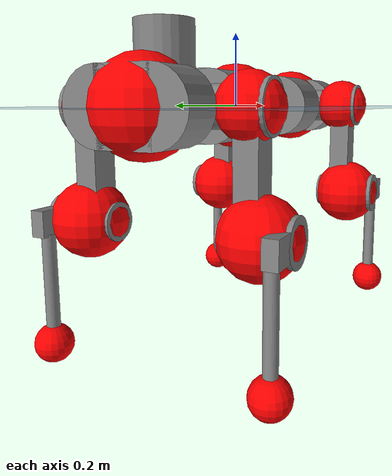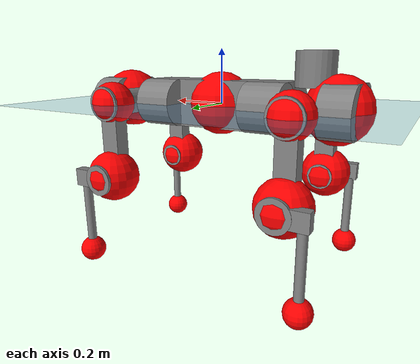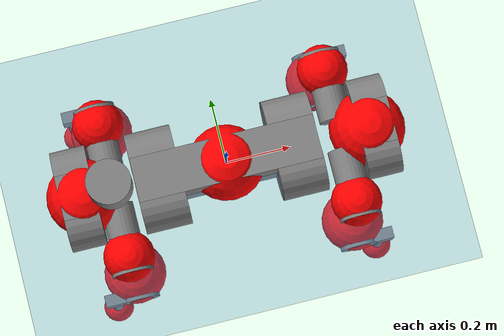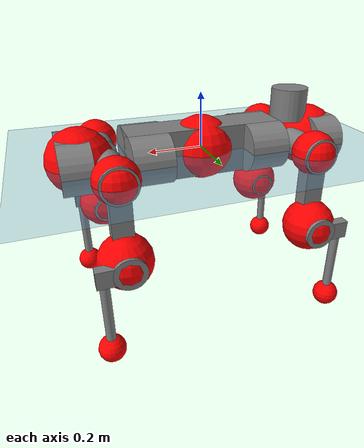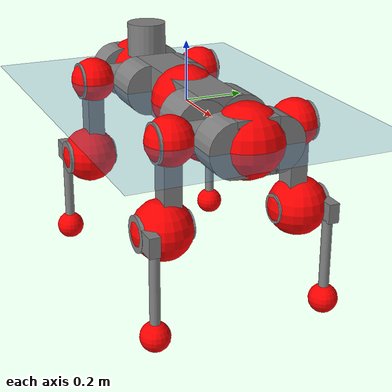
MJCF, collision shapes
<mujoco model="anymal_c">
  <compiler angle="radian" assetdir="assets" balanceinertia="true" inertiafromgeom="false"/>

  <option timestep="0.005" density="1.2" viscosity="2e-05"/>

  <size nkey="1"/>

  <visual>
    <quality shadowsize="8192"/>
    <map shadowclip="0.5"/>
  </visual>

  <default>
    <default class="/">
      <material specular="0" shininess="0.25"/>
      <geom contype="0" conaffinity="0" group="1" solref="-1000 -80"/>
      <site size="0.01 0.005 0.005" group="5"/>
      <general forcelimited="true" forcerange="-80 80" biastype="affine" gainprm="80" biasprm="0 -80 -2"/>
      <default class="anymal_c">
        <joint armature="0.01" damping="0.01" frictionloss="0.1"/>
        <default class="visual">
          <geom type="mesh" group="2"/>
          <default class="visual_zflip"/>
        </default>
        <default class="collision">
          <geom type="cylinder" group="3"/>
          <default class="foot">
            <geom size="0.03 0 0" type="sphere" condim="6" priority="1" friction="0.8 0.02 0.01" solimp="0.015 1 0.03"/>
          </default>
        </default>
      </default>
      <default class="reward_collision_sphere">
        <geom group="5" rgba="1 0 0 1"/>
      </default>
    </default>
  </default>

  <asset>
    <texture type="skybox" colorspace="auto" name="//unnamed_texture_0" builtin="gradient" rgb1="0.95 0.95 0.95" rgb2="0.95 0.95 0.95" width="100" height="600"/>
    <texture type="2d" colorspace="auto" name="texplane" builtin="checker" rgb1="0.345 0.575 0.748" rgb2="0.345 0.575 0.748" markrgb="1 1 1" width="512" height="512"/>
    <texture type="2d" colorspace="linear" name="base" file="base.png"/>
    <texture type="2d" colorspace="linear" name="top_shell" file="top_shell.png"/>
    <texture type="2d" colorspace="linear" name="bottom_shell" file="bottom_shell.png"/>
    <texture type="2d" colorspace="linear" name="remote" file="remote.png"/>
    <texture type="2d" colorspace="linear" name="hatch" file="hatch.png"/>
    <texture type="2d" colorspace="linear" name="handle" file="handle.png"/>
    <texture type="2d" colorspace="linear" name="face" file="face.png"/>
    <texture type="2d" colorspace="linear" name="battery" file="battery.png"/>
    <texture type="2d" colorspace="linear" name="lidar_cage" file="lidar_cage.png"/>
    <texture type="2d" colorspace="linear" name="depth_camera" file="depth_camera.png"/>
    <texture type="2d" colorspace="linear" name="wide_angle_camera" file="wide_angle_camera.png"/>
    <texture type="2d" colorspace="linear" name="lidar" file="lidar.png"/>
    <texture type="2d" colorspace="linear" name="drive" file="drive.png"/>
    <texture type="2d" colorspace="linear" name="hip_l" file="hip_l.png"/>
    <texture type="2d" colorspace="linear" name="shank_l" file="shank_l.png"/>
    <texture type="2d" colorspace="linear" name="foot" file="foot.png"/>
    <texture type="2d" colorspace="linear" name="thigh" file="thigh.png"/>
    <texture type="2d" colorspace="linear" name="shank_r" file="shank_r.png"/>
    <texture type="2d" colorspace="linear" name="hip_r" file="hip_r.png"/>
    <material name="MatPlane" class="/" texture="texplane" texuniform="true" texrepeat="2 2" specular="0.9" shininess="0.5"/>
    <material name="black_plastic" class="/" rgba="0.007 0.007 0.007 1"/>
    <material name="green" class="/" rgba="0.052 0.178 0.033 1"/>
    <material name="red" class="/" rgba="0.178 0.006 0.005 1"/>
    <material name="yellow" class="/" rgba="0.178 0.119 0.006 1"/>
    <material name="lwl" class="/" rgba="0.8 0.8 0.8 1"/>
    <material name="base" class="/" texture="base"/>
    <material name="top_shell" class="/" texture="top_shell"/>
    <material name="bottom_shell" class="/" texture="bottom_shell"/>
    <material name="hip_l" class="/" texture="hip_l"/>
    <material name="thigh" class="/" texture="thigh"/>
    <material name="shank_l" class="/" texture="shank_l"/>
    <material name="foot" class="/" texture="foot"/>
    <material name="hip_r" class="/" texture="hip_r"/>
    <material name="shank" class="/" texture="shank_r"/>
    <material name="hatch" class="/" texture="hatch"/>
    <material name="remote" class="/" texture="remote"/>
    <material name="handle" class="/" texture="handle"/>
    <material name="face" class="/" texture="face"/>
    <material name="depth_camera" class="/" texture="depth_camera"/>
    <material name="wide_angle_camera" class="/" texture="wide_angle_camera"/>
    <material name="battery" class="/" texture="battery"/>
    <material name="lidar_cage" class="/" texture="lidar_cage"/>
    <material name="lidar" class="/" texture="lidar"/>
    <material name="drive" class="/" texture="drive"/>
    <mesh name="base_0" class="/" file="base_0.obj"/>
    <mesh name="base_1" class="/" file="base_1.obj"/>
    <mesh name="base_2" class="/" file="base_2.obj"/>
    <mesh name="base_3" class="/" file="base_3.obj"/>
    <mesh name="base_4" class="/" file="base_4.obj"/>
    <mesh name="base_5" class="/" file="base_5.obj"/>
    <mesh name="top_shell" class="/" file="top_shell.obj"/>
    <mesh name="bottom_shell" class="/" file="bottom_shell.obj"/>
    <mesh name="remote" class="/" file="remote.obj"/>
    <mesh name="handle" class="/" file="handle.obj"/>
    <mesh name="face" class="/" file="face.obj"/>
    <mesh name="wide_angle_camera" class="/" file="wide_angle_camera.obj"/>
    <mesh name="depth_camera" class="/" file="depth_camera.obj"/>
    <mesh name="battery" class="/" file="battery.obj"/>
    <mesh name="lidar_cage" class="/" file="lidar_cage.obj"/>
    <mesh name="lidar" class="/" file="lidar.obj"/>
    <mesh name="drive" class="/" file="drive.obj"/>
    <mesh name="hip_l" class="/" file="hip_l.obj"/>
    <mesh name="thigh" class="/" file="thigh.obj"/>
    <mesh name="shank_l" class="/" file="shank_l.obj"/>
    <mesh name="foot" class="/" file="foot.obj"/>
    <mesh name="hip_r" class="/" file="hip_r.obj"/>
    <mesh name="hatch" class="/" file="hatch.obj"/>
    <mesh name="shank_r" class="/" file="shank_r.obj"/>
  </asset>

  <worldbody>
    <geom name="floor" class="/" size="100 100 0.125" type="plane" group="0" material="MatPlane"/>
    <light name="toplight_shadow" class="/" pos="0 0 5" dir="0.0990148 0.0990148 -0.990148" type="directional" ambient="0.04 0.04 0.04" diffuse="0.55 0.55 0.55" specular="0.12 0.12 0.12"/>
    <light name="toplight_fill" class="/" pos="0 0 5" dir="0.0990148 0.0990148 -0.990148" type="directional" castshadow="false" ambient="0.04 0.04 0.04" diffuse="0.3 0.3 0.3" specular="0.08 0.08 0.08"/>
    <body name="trunk" childclass="anymal_c" pos="0.000155795 0.000155115 0.000520647" quat="1 -7.95216e-05 1.10223e-05 0.000160554">
      <inertial pos="0.0023023 -0.000739416 0.0478816" quat="0.500784 0.500271 0.49958 0.499364" mass="17.4476" diaginertia="0.580672 0.543524 0.194635"/>
      <joint name="//unnamed_joint_0" type="free" armature="0" damping="0" frictionloss="0"/>
      <geom name="//unnamed_geom_1" class="visual" material="green" mesh="base_0"/>
      <geom name="//unnamed_geom_2" class="visual" material="yellow" mesh="base_1"/>
      <geom name="//unnamed_geom_3" class="visual" material="red" mesh="base_2"/>
      <geom name="//unnamed_geom_4" class="visual" material="black_plastic" mesh="base_3"/>
      <geom name="//unnamed_geom_5" class="visual" material="lwl" mesh="base_4"/>
      <geom name="//unnamed_geom_6" class="visual" material="base" mesh="base_5"/>
      <geom name="trunk_1" class="collision" size="0.284306 0.0686255 0.0882328" type="box"/>
      <geom name="trunk_2" class="collision" size="0.0882328 0.0710764" pos="0.214083 0.0682512 0" quat="0.707107 0 0.707107 0"/>
      <geom name="trunk_3" class="collision" size="0.0882328 0.0710764" pos="-0.214083 0.0682512 0" quat="0.707107 0 0.707107 0"/>
      <geom name="trunk_4" class="collision" size="0.0882328 0.0710764" pos="0.214083 -0.0682512 0" quat="0.707107 0 0.707107 0"/>
      <geom name="trunk_5" class="collision" size="0.0882328 0.0710764" pos="-0.214083 -0.0682512 0" quat="0.707107 0 0.707107 0"/>
      <geom name="//unnamed_geom_12" class="visual" material="top_shell" mesh="top_shell"/>
      <geom name="//unnamed_geom_13" class="visual" material="bottom_shell" mesh="bottom_shell"/>
      <geom name="//unnamed_geom_14" class="visual" material="remote" mesh="remote"/>
      <geom name="//unnamed_geom_15" class="visual" material="handle" mesh="handle"/>
      <geom name="//unnamed_geom_16" class="visual" pos="0.407987 0 0" quat="1 0 0 0" material="face" mesh="face"/>
      <geom name="trunk_6" class="collision" size="0.05392 0.0686255 0.0882328" pos="0.462123 0 0" type="box"/>
      <geom name="//unnamed_geom_18" class="collision" size="0.0882328 0.05392" pos="0.462123 0.0682512 0" quat="0.707107 0 0.707107 0"/>
      <geom name="//unnamed_geom_19" class="collision" size="0.0882328 0.05392" pos="0.462123 -0.0682512 0" quat="0.707107 0 0.707107 0"/>
      <geom name="//unnamed_geom_20" class="visual" pos="0.454396 0 -0.0286492" quat="0.965926 0 0.258819 0" material="depth_camera" mesh="depth_camera"/>
      <geom name="//unnamed_geom_21" class="visual" pos="0.50494 0 0.0146974" material="wide_angle_camera" mesh="wide_angle_camera"/>
      <geom name="//unnamed_geom_22" class="visual_zflip" pos="-0.407987 0 0" quat="0 0 0 1" material="face" mesh="face"/>
      <geom name="trunk_7" class="collision" size="0.05392 0.0686255 0.0882328" pos="-0.462123 0 0" quat="0 0 0 1" type="box"/>
      <geom name="//unnamed_geom_24" class="collision" size="0.0882328 0.05392" pos="-0.462123 -0.0682512 0" quat="0 -0.707107 0 0.707107"/>
      <geom name="//unnamed_geom_25" class="collision" size="0.0882328 0.05392" pos="-0.462123 0.0682512 0" quat="0 -0.707107 0 0.707107"/>
      <geom name="//unnamed_geom_26" class="visual" pos="-0.454396 0 -0.0286492" quat="0 -0.258819 0 0.965926" material="depth_camera" mesh="depth_camera"/>
      <geom name="//unnamed_geom_27" class="visual_zflip" pos="-0.50494 0 0.0146974" quat="0 0 0 1" material="wide_angle_camera" mesh="wide_angle_camera"/>
      <geom name="//unnamed_geom_28" class="visual" material="battery" mesh="battery"/>
      <geom name="//unnamed_geom_29" class="visual" pos="0 0.0744281 0.0285399" quat="0.683013 -0.183013 0.183013 0.683013" material="depth_camera" mesh="depth_camera"/>
      <geom name="//unnamed_geom_30" class="visual" pos="0 -0.0744281 0.0285399" quat="0.683013 0.183013 0.183013 -0.683013" material="depth_camera" mesh="depth_camera"/>
      <geom name="//unnamed_geom_31" class="visual" pos="-0.358281 0 0.0721614" quat="1 0 0 0" material="lidar_cage" mesh="lidar_cage"/>
      <geom name="trunk_8" class="collision" size="0.0686255 0.0588219" pos="-0.358281 0 0.131069"/>
      <geom name="//unnamed_geom_33" class="visual" pos="-0.358281 -3.6422e-06 0.13961" quat="0.707107 0 0 -0.707107" material="lidar" mesh="lidar"/>
      <geom name="//unnamed_geom_34" class="visual" pos="0.295188 0.101404 -1.16798e-10" quat="0.258819 0.965926 0 0" material="drive" mesh="drive"/>
      <geom name="//unnamed_geom_35" class="visual" pos="0.295188 -0.101404 1.16798e-10" quat="0.258819 -0.965926 0 0" material="drive" mesh="drive"/>
      <geom name="//unnamed_geom_36" class="visual" pos="-0.295188 0.101404 1.16798e-10" quat="0 0 0.965926 -0.258819" material="drive" mesh="drive"/>
      <geom name="//unnamed_geom_37" class="visual" pos="-0.295188 -0.101404 -1.16798e-10" quat="0 0 -0.965926 -0.258819" material="drive" mesh="drive"/>
      <geom name="//unnamed_geom_38" class="visual" pos="0.114177 0 0.0716705" quat="1 0 0 0" material="hatch" mesh="hatch"/>
      <geom name="//unnamed_geom_39" class="reward_collision_sphere" size="0.117644"/>
      <geom name="//unnamed_geom_40" class="reward_collision_sphere" size="0.117644" pos="0.442929 0 0"/>
      <geom name="//unnamed_geom_41" class="reward_collision_sphere" size="0.117644" pos="-0.442929 0 0"/>
      <site name="imu" pos="0.237818 0.00564016 0.0482413" size="0.00980364"/>
      <camera name="track" pos="0 -1.95003 0" quat="0.707107 0.707107 0 0" mode="trackcom"/>
      <camera name="ego_camera" pos="0.442929 0 -0.0392715" quat="-0.5 -0.5 0.5 0.5"/>
      <body name="LF_HIP" pos="0.296017 0.101307 0.000312274" quat="0.258341 0.966054 0.000191413 -0.000272334">
        <inertial pos="0.0565034 -0.0136854 -0.00802738" quat="-0.123779 0.709871 -0.134817 0.680137" mass="2.60392" diaginertia="0.00536794 0.00434631 0.00299784"/>
        <joint name="LF_HAA" pos="0 0 0" axis="0.999999 0.000377299 0.00145659" stiffness="0.000500569" range="-0.718176 0.470993" armature="0.0103601" damping="0.002768" frictionloss="0.0957244"/>
        <geom name="//unnamed_geom_42" class="visual" pos="0 -6.87072e-06 1.12851e-06" quat="0.258819 -0.965926 0 0" material="hip_l" mesh="hip_l"/>
        <geom name="//unnamed_geom_43" class="visual" pos="0.0589588 -0.0713215 -0.0412276" quat="0.183013 -0.683013 0.683013 0.183013" material="drive" mesh="drive"/>
        <geom name="//unnamed_geom_44" class="collision" size="0.0490182 0.0686255" pos="0.0589588 -0.011661 -0.00677925" quat="-0.353553 -0.612372 0.612372 -0.353553"/>
        <body name="LF_THIGH" pos="0.0590983 -0.0709326 -0.041674" quat="0.182845 -0.683101 0.682924 0.18318">
          <inertial pos="0.0295664 5.9161e-05 -0.240409" quat="0.993183 -0.00502568 -0.0802581 0.0843837" mass="2.85682" diaginertia="0.027602 0.0262957 0.00378494"/>
          <joint name="LF_HFE" pos="0 0 0" axis="0.999986 0.0023232 -0.00480945" range="-3.14096 3.14758" armature="0.010042" damping="0.0111594" frictionloss="0.0953657"/>
          <geom name="//unnamed_geom_45" class="visual" pos="0.00018445 2.9065e-07 0" quat="0.707107 0 0 -0.707107" material="thigh" mesh="thigh"/>
          <geom name="//unnamed_geom_46" class="collision" size="0.0637237 0.0392146" pos="0.0393715 0 0" quat="0.5 0.5 -0.5 -0.5"/>
          <geom name="//unnamed_geom_47" class="collision" size="0.0367637 0.0294109 0.138539" pos="0.0295286 0 -0.13874" quat="0.707107 0 0 -0.707107" type="box"/>
          <geom name="//unnamed_geom_48" class="visual" pos="0.0987241 0 -0.27981" quat="1 0 0 0" material="drive" mesh="drive"/>
          <geom name="//unnamed_geom_49" class="collision" size="0.0490182 0.0686255" pos="0.0298239 0 -0.27981" quat="0.707107 0 0.707107 0"/>
          <geom name="//unnamed_geom_50" class="reward_collision_sphere" size="0.0784291" pos="0.0246072 0 0"/>
          <body name="LF_SHANK" pos="0.0985137 -0.000398388 -0.281083" quat="1 -6.20238e-05 -3.72262e-05 5.589e-05">
            <inertial pos="0.00505743 -0.0597307 -0.079417" quat="0.992918 -0.116012 -0.0010142 -0.0255905" mass="0.563161" diaginertia="0.00950308 0.00813816 0.00102903"/>
            <joint name="LF_KFE" pos="0 0 0" axis="1 -0.000370991 0.000164322" stiffness="0.000273145" range="-3.12843 3.12652" armature="0.00929957" damping="0.00503319" frictionloss="0.0943104"/>
            <geom name="//unnamed_geom_51" class="visual" pos="6.01451e-05 0.000320697 0" quat="0.707107 0 0 -0.707107" material="shank_l" mesh="shank_l"/>
            <geom name="LF_kfe_act" class="collision" size="0.0588219 0.0196073" pos="0.0196858 0 0" quat="0.5 0.5 -0.5 -0.5"/>
            <geom name="//unnamed_geom_53" class="collision" size="0.05637 0.0330873 0.0186269" pos="0.0196858 -0.0560625 0" quat="0.5 0.5 -0.5 -0.5" type="box"/>
            <geom name="//unnamed_geom_54" class="visual" pos="0.0128449 -0.0856494 -0.331815" quat="0.382683 0 0 -0.92388" material="foot" mesh="foot"/>
            <geom name="LF_calf" class="collision" size="0.0171564 0.138478" pos="0.012845 -0.0857528 -0.165907" quat="0.707107 0 0 -0.707107"/>
            <geom name="LF_foot" class="foot" size="0.0321903" pos="0.012845 -0.0857528 -0.309725" quat="0.707107 0 0 -0.707107"/>
            <geom name="//unnamed_geom_57" class="reward_collision_sphere" size="0.0980364" pos="-0.0492144 0 0"/>
            <geom name="//unnamed_geom_58" class="reward_collision_sphere" size="0.0490182" pos="0.012845 -0.0857528 -0.309725"/>
            <site name="LF_foot" class="foot" pos="0.012845 -0.0857528 -0.309725" quat="0.707107 0 0 -0.707107" size="0.00980364"/>
          </body>
        </body>
      </body>
      <body name="RF_HIP" pos="0.296488 -0.101858 0.000959699" quat="0.258869 -0.965912 -3.17408e-05 -6.27044e-05">
        <inertial pos="0.0564096 0.0149325 -0.00810515" quat="0.135309 0.678985 0.127925 0.710145" mass="2.59141" diaginertia="0.0054189 0.00424342 0.00297492"/>
        <joint name="RF_HAA" pos="0 0 0" axis="0.999999 0.00133863 -0.000781469" stiffness="0.00118322" range="-0.50915 0.731387" armature="0.00958832" damping="0.00949482" frictionloss="0.0949844"/>
        <geom name="//unnamed_geom_59" class="visual" pos="0 6.87066e-06 1.12851e-06" quat="0.258819 0.965926 0 0" material="hip_r" mesh="hip_r"/>
        <geom name="//unnamed_geom_60" class="visual" pos="0.0589588 0.0713215 -0.0412276" quat="0.183013 0.683013 0.683013 -0.183013" material="drive" mesh="drive"/>
        <geom name="//unnamed_geom_61" class="collision" size="0.0490182 0.0686255" pos="0.0589588 0.011661 -0.00677925" quat="-0.353553 0.612372 0.612372 0.353553"/>
        <body name="RF_THIGH" pos="0.0600776 0.071826 -0.0408023" quat="0.182974 0.68296 0.683102 -0.182913">
          <inertial pos="0.0303353 0.000473642 -0.2413" quat="0.99279 -0.00310557 -0.081021 0.088283" mass="2.86137" diaginertia="0.0280716 0.0261416 0.00377922"/>
          <joint name="RF_HFE" pos="0 0 0" axis="1 0.000484509 -0.000757837" stiffness="0.00547719" range="-3.11482 3.12635" armature="0.00980127" damping="0.00763861" frictionloss="0.106525"/>
          <geom name="//unnamed_geom_62" class="visual" pos="0.00018445 2.9065e-07 0" quat="0.707107 0 0 -0.707107" material="thigh" mesh="thigh"/>
          <geom name="//unnamed_geom_63" class="collision" size="0.0637237 0.0392146" pos="0.0393715 0 0" quat="0.5 0.5 0.5 0.5"/>
          <geom name="//unnamed_geom_64" class="collision" size="0.0367637 0.0294109 0.138539" pos="0.0295286 0 -0.13874" quat="0.707107 0 0 0.707107" type="box"/>
          <geom name="//unnamed_geom_65" class="visual" pos="0.0987241 0 -0.27981" quat="1 0 0 0" material="drive" mesh="drive"/>
          <geom name="//unnamed_geom_66" class="collision" size="0.0490182 0.0686255" pos="0.0298239 0 -0.27981" quat="0.707107 0 0.707107 0"/>
          <geom name="//unnamed_geom_67" class="reward_collision_sphere" size="0.0784291" pos="0.0246072 0 0"/>
          <body name="RF_SHANK" pos="0.0991742 -0.00078663 -0.280581" quat="1 2.50776e-05 4.47243e-06 3.24377e-06">
            <inertial pos="0.00535729 0.0599944 -0.078026" quat="0.99331 0.113146 -0.00339012 0.0228611" mass="0.550892" diaginertia="0.00923792 0.00813881 0.00101828"/>
            <joint name="RF_KFE" pos="0 0 0" axis="1 -0.000566701 0.000494516" range="-3.11679 3.12105" armature="0.00999819" damping="0.0115717" frictionloss="0.0921838"/>
            <geom name="//unnamed_geom_68" class="visual" pos="6.01448e-05 -0.000320696 0" quat="0.707107 0 0 0.707107" material="shank" mesh="shank_r"/>
            <geom name="RF_kfe_act" class="collision" size="0.0588219 0.0196073" pos="0.0196858 0 0" quat="0.5 0.5 0.5 0.5"/>
            <geom name="//unnamed_geom_70" class="collision" size="0.05637 0.0330873 0.0186269" pos="0.0196858 0.0560625 0" quat="0.5 0.5 0.5 0.5" type="box"/>
            <geom name="//unnamed_geom_71" class="visual" pos="0.012845 0.0856494 -0.331815" quat="0.382683 0 0 0.92388" material="foot" mesh="foot"/>
            <geom name="RF_calf" class="collision" size="0.0171564 0.138478" pos="0.012845 0.0857528 -0.165907" quat="0.707107 0 0 0.707107"/>
            <geom name="RF_foot" class="foot" size="0.0278019" pos="0.012845 0.0857528 -0.309725" quat="0.707107 0 0 0.707107"/>
            <geom name="//unnamed_geom_74" class="reward_collision_sphere" size="0.0980364" pos="-0.0492144 0 0"/>
            <geom name="//unnamed_geom_75" class="reward_collision_sphere" size="0.0490182" pos="0.012845 0.0857528 -0.309725"/>
            <site name="RF_foot" class="foot" pos="0.012845 0.0857528 -0.309725" quat="0.707107 0 0 0.707107" size="0.00980364"/>
          </body>
        </body>
      </body>
      <body name="LH_HIP" pos="-0.295723 0.101293 -0.000373965" quat="3.17556e-05 -6.21331e-05 0.965935 -0.258784">
        <inertial pos="0.0549936 0.0154519 -0.00843797" quat="0.134561 0.67652 0.130299 0.712205" mass="2.5998" diaginertia="0.0054255 0.00438379 0.00296768"/>
        <joint name="LH_HAA" pos="0 0 0" axis="0.999998 0.000629215 -0.00170643" range="-0.505687 0.688784" armature="0.00942921" damping="0.0136167" frictionloss="0.0996205"/>
        <geom name="//unnamed_geom_76" class="visual" pos="0 6.87066e-06 1.12851e-06" quat="-0.258819 -0.965926 0 0" material="hip_r" mesh="hip_r"/>
        <geom name="//unnamed_geom_77" class="visual" pos="0.0589588 0.0713215 -0.0412276" quat="0.183013 0.683013 0.683013 -0.183013" material="drive" mesh="drive"/>
        <geom name="//unnamed_geom_78" class="collision" size="0.0490182 0.0686255" pos="0.0589588 0.011661 -0.00677925" quat="-0.353553 0.612372 0.612372 0.353553"/>
        <body name="LH_THIGH" pos="0.0588504 0.0696892 -0.0409235" quat="0.183052 0.683114 0.682904 -0.183004">
          <inertial pos="0.0304116 -4.59858e-05 -0.241575" quat="0.992808 -0.00503244 -0.0804266 0.0885329" mass="2.89804" diaginertia="0.0279207 0.0266288 0.00380643"/>
          <joint name="LH_HFE" pos="0 0 0" axis="0.999994 -0.00103728 0.00342761" range="-3.13981 3.13288" armature="0.0102688" damping="0.0134413" frictionloss="0.0952482"/>
          <geom name="//unnamed_geom_79" class="visual" pos="0.00018445 2.9065e-07 0" quat="0.707107 0 0 -0.707107" material="thigh" mesh="thigh"/>
          <geom name="//unnamed_geom_80" class="collision" size="0.0637237 0.0392146" pos="0.0393715 0 0" quat="0.5 0.5 -0.5 -0.5"/>
          <geom name="//unnamed_geom_81" class="collision" size="0.0367637 0.0294109 0.138539" pos="0.0295286 0 -0.13874" quat="0.707107 0 0 -0.707107" type="box"/>
          <geom name="//unnamed_geom_82" class="visual" pos="0.0987241 0 -0.27981" quat="1 0 0 0" material="drive" mesh="drive"/>
          <geom name="//unnamed_geom_83" class="collision" size="0.0490182 0.0686255" pos="0.0298239 0 -0.27981" quat="0.707107 0 0.707107 0"/>
          <geom name="//unnamed_geom_84" class="reward_collision_sphere" size="0.0784291" pos="0.0246072 0 0"/>
          <body name="LH_SHANK" pos="0.0999889 -0.000678917 -0.279672" quat="1 -1.28239e-05 -0.000301691 -3.65969e-05">
            <inertial pos="0.00536928 0.0596917 -0.0791763" quat="0.993513 0.109501 -0.00305817 0.0305311" mass="0.555522" diaginertia="0.00939838 0.00820384 0.00100493"/>
            <joint name="LH_KFE" pos="0 0 0" axis="0.999999 -0.00128037 0.000277319" range="-3.14945 3.13989" armature="0.00988543" damping="0.00997455" frictionloss="0.0946842"/>
            <geom name="//unnamed_geom_85" class="visual" pos="6.01448e-05 -0.000320696 0" quat="-0.707107 0 0 -0.707107" material="shank" mesh="shank_r"/>
            <geom name="LH_kfe_act" class="collision" size="0.0588219 0.0196073" pos="0.0196858 0 0" quat="0.5 0.5 -0.5 -0.5"/>
            <geom name="//unnamed_geom_87" class="collision" size="0.05637 0.0330873 0.0186269" pos="0.0196858 0.0560625 0" quat="0.5 0.5 -0.5 -0.5" type="box"/>
            <geom name="//unnamed_geom_88" class="visual" pos="0.012845 0.0856494 -0.331815" quat="-0.382683 0 0 -0.92388" material="foot" mesh="foot"/>
            <geom name="LH_calf" class="collision" size="0.0171564 0.138478" pos="0.012845 0.0857528 -0.165907" quat="0.707107 0 0 -0.707107"/>
            <geom name="LH_foot" class="foot" size="0.032275" pos="0.012845 0.0857528 -0.309725" quat="0.707107 0 0 -0.707107"/>
            <geom name="//unnamed_geom_91" class="reward_collision_sphere" size="0.0980364" pos="-0.0492144 0 0"/>
            <geom name="//unnamed_geom_92" class="reward_collision_sphere" size="0.0490182" pos="0.012845 0.0857528 -0.309725"/>
            <site name="LH_foot" class="foot" pos="0.012845 0.0857528 -0.309725" quat="0.707107 0 0 -0.707107" size="0.00980364"/>
          </body>
        </body>
      </body>
      <body name="RH_HIP" pos="-0.295314 -0.102461 0.000700944" quat="2.0964e-05 -0.00018447 -0.965934 -0.258789">
        <inertial pos="0.0548833 -0.0150371 -0.00795449" quat="-0.127879 0.709848 -0.135611 0.679244" mass="2.65013" diaginertia="0.00549085 0.00439094 0.0029917"/>
        <joint name="RH_HAA" pos="0 0 0" axis="0.999999 -0.000896949 -0.000998147" stiffness="0.00233571" range="-0.72987 0.519897" armature="0.00969253" damping="0.0122624" frictionloss="0.0983526"/>
        <geom name="//unnamed_geom_93" class="visual" pos="0 -6.87072e-06 1.12851e-06" quat="-0.258819 0.965926 0 0" material="hip_l" mesh="hip_l"/>
        <geom name="//unnamed_geom_94" class="visual" pos="0.0589588 -0.0713215 -0.0412276" quat="-0.183013 0.683013 -0.683013 -0.183013" material="drive" mesh="drive"/>
        <geom name="//unnamed_geom_95" class="collision" size="0.0490182 0.0686255" pos="0.0589588 -0.011661 -0.00677925" quat="0.353553 0.612372 -0.612372 0.353553"/>
        <body name="RH_THIGH" pos="0.058877 -0.069927 -0.0404019" quat="-0.182982 0.682993 -0.683006 -0.183143">
          <inertial pos="0.0300954 -0.000189676 -0.240507" quat="0.993197 -0.00513622 -0.0804359 0.0840391" mass="2.79042" diaginertia="0.0272665 0.0257088 0.00375483"/>
          <joint name="RH_HFE" pos="0 0 0" axis="0.999999 -0.000157515 0.00153753" range="-3.14304 3.14615" armature="0.0101906" damping="0.0110409" frictionloss="0.0988264"/>
          <geom name="//unnamed_geom_96" class="visual" pos="0.00018445 2.9065e-07 0" quat="0.707107 0 0 -0.707107" material="thigh" mesh="thigh"/>
          <geom name="//unnamed_geom_97" class="collision" size="0.0637237 0.0392146" pos="0.0393715 0 0" quat="0.5 0.5 0.5 0.5"/>
          <geom name="//unnamed_geom_98" class="collision" size="0.0367637 0.0294109 0.138539" pos="0.0295286 0 -0.13874" quat="0.707107 0 0 0.707107" type="box"/>
          <geom name="//unnamed_geom_99" class="visual" pos="0.0987241 0 -0.27981" quat="1 0 0 0" material="drive" mesh="drive"/>
          <geom name="//unnamed_geom_100" class="collision" size="0.0490182 0.0686255" pos="0.0298239 0 -0.27981" quat="0.707107 0 0.707107 0"/>
          <geom name="//unnamed_geom_101" class="reward_collision_sphere" size="0.0784291" pos="0.0246072 0 0"/>
          <body name="RH_SHANK" pos="0.0976177 -0.00020366 -0.280433" quat="1 8.59134e-05 6.07884e-05 0.00051613">
            <inertial pos="0.00616719 -0.0595297 -0.0794188" quat="0.993047 -0.114917 -0.000122177 -0.0255174" mass="0.557363" diaginertia="0.00950095 0.00816039 0.0010172"/>
            <joint name="RH_KFE" pos="0 0 0" axis="0.999974 -0.00019965 -0.00726105" range="-3.13816 3.14336" armature="0.00920914" damping="0.00603054" frictionloss="0.0981561"/>
            <geom name="//unnamed_geom_102" class="visual" pos="6.01451e-05 0.000320697 0" quat="0.707107 0 0 -0.707107" material="shank_l" mesh="shank_l"/>
            <geom name="RH_kfe_act" class="collision" size="0.0588219 0.0196073" pos="0.0196858 0 0" quat="0.5 0.5 0.5 0.5"/>
            <geom name="//unnamed_geom_104" class="collision" size="0.05637 0.0330873 0.0186269" pos="0.0196858 -0.0560625 0" quat="0.5 0.5 0.5 0.5" type="box"/>
            <geom name="//unnamed_geom_105" class="visual" pos="0.0128449 -0.0856494 -0.331815" quat="0.382683 0 0 -0.92388" material="foot" mesh="foot"/>
            <geom name="RH_calf" class="collision" size="0.0171564 0.138478" pos="0.012845 -0.0857528 -0.165907" quat="0.707107 0 0 0.707107"/>
            <geom name="RH_foot" class="foot" size="0.0269029" pos="0.012845 -0.0857528 -0.309725" quat="0.707107 0 0 0.707107"/>
            <geom name="//unnamed_geom_108" class="reward_collision_sphere" size="0.0980364" pos="-0.0492144 0 0"/>
            <geom name="//unnamed_geom_109" class="reward_collision_sphere" size="0.0490182" pos="0.012845 -0.0857528 -0.309725"/>
            <site name="RH_foot" class="foot" pos="0.012845 -0.0857528 -0.309725" quat="0.707107 0 0 0.707107" size="0.00980364"/>
          </body>
        </body>
      </body>
    </body>
  </worldbody>

  <contact>
    <pair class="/" geom1="floor" geom2="LF_foot" name="//unnamed_contact_0"/>
    <pair class="/" geom1="floor" geom2="RF_foot" name="//unnamed_contact_1"/>
    <pair class="/" geom1="floor" geom2="LH_foot" name="//unnamed_contact_2"/>
    <pair class="/" geom1="floor" geom2="RH_foot" name="//unnamed_contact_3"/>
  </contact>

  <actuator>
    <general name="LF_HAA" class="/" joint="LF_HAA" forcerange="-77.4861 77.4861" gainprm="83.1299" biasprm="0 -83.1299 -1.95154"/>
    <general name="LF_HFE" class="/" joint="LF_HFE" forcerange="-81.3449 81.3449" gainprm="83.1299" biasprm="0 -83.1299 -1.95154"/>
    <general name="LF_KFE" class="/" joint="LF_KFE" forcerange="-77.5922 77.5922" gainprm="83.1299" biasprm="0 -83.1299 -1.95154"/>
    <general name="RF_HAA" class="/" joint="RF_HAA" forcerange="-81.3568 81.3568" gainprm="83.1299" biasprm="0 -83.1299 -1.95154"/>
    <general name="RF_HFE" class="/" joint="RF_HFE" forcerange="-76.4883 76.4883" gainprm="83.1299" biasprm="0 -83.1299 -1.95154"/>
    <general name="RF_KFE" class="/" joint="RF_KFE" forcerange="-77.733 77.733" gainprm="83.1299" biasprm="0 -83.1299 -1.95154"/>
    <general name="LH_HAA" class="/" joint="LH_HAA" forcerange="-78.9972 78.9972" gainprm="83.1299" biasprm="0 -83.1299 -1.95154"/>
    <general name="LH_HFE" class="/" joint="LH_HFE" forcerange="-78.0165 78.0165" gainprm="83.1299" biasprm="0 -83.1299 -1.95154"/>
    <general name="LH_KFE" class="/" joint="LH_KFE" forcerange="-78.0316 78.0316" gainprm="83.1299" biasprm="0 -83.1299 -1.95154"/>
    <general name="RH_HAA" class="/" joint="RH_HAA" forcerange="-79.412 79.412" gainprm="83.1299" biasprm="0 -83.1299 -1.95154"/>
    <general name="RH_HFE" class="/" joint="RH_HFE" forcerange="-75.5357 75.5357" gainprm="83.1299" biasprm="0 -83.1299 -1.95154"/>
    <general name="RH_KFE" class="/" joint="RH_KFE" forcerange="-79.1143 79.1143" gainprm="83.1299" biasprm="0 -83.1299 -1.95154"/>
  </actuator>

  <sensor>
    <gyro site="imu" name="imu_angular_velocity"/>
    <velocimeter site="imu" name="imu_linear_velocity"/>
    <framelinvel objtype="site" objname="LF_foot" name="LF_foot_global_linear_velocity"/>
    <framelinvel objtype="site" objname="RF_foot" name="RF_foot_global_linear_velocity"/>
    <framelinvel objtype="site" objname="LH_foot" name="LH_foot_global_linear_velocity"/>
    <framelinvel objtype="site" objname="RH_foot" name="RH_foot_global_linear_velocity"/>
  </sensor>

  <keyframe>
    <key name="home" qpos="0 0 0.55 1 0 0 0 0 0.4 -0.8 0 -0.4 0.8 0 -0.4 0.8 0 0.4 -0.8"/>
  </keyframe>
</mujoco>
